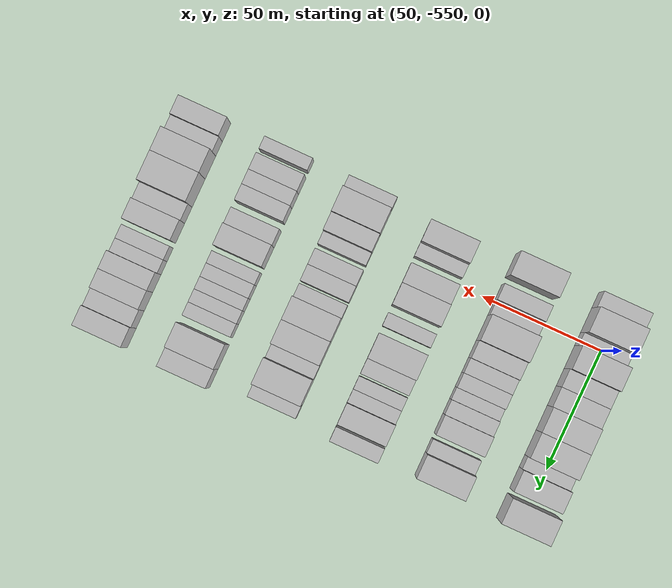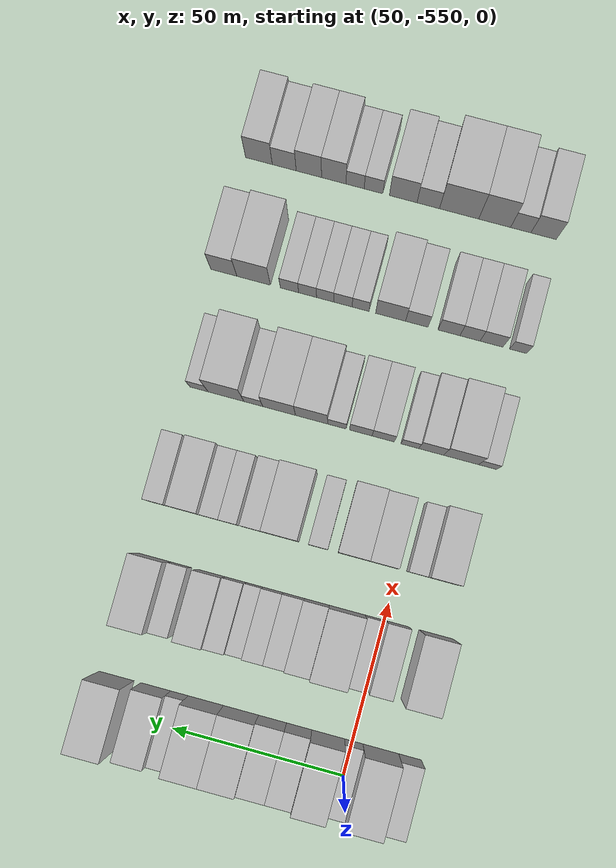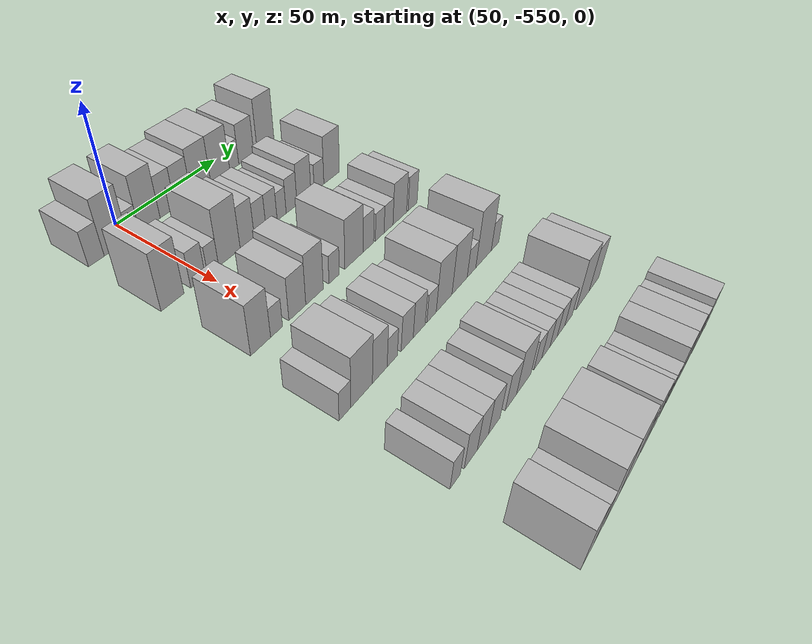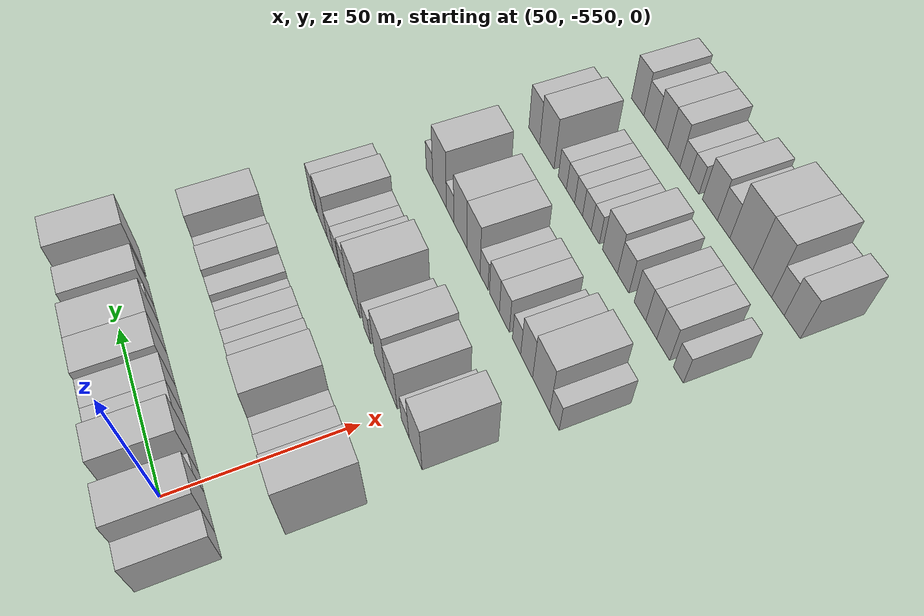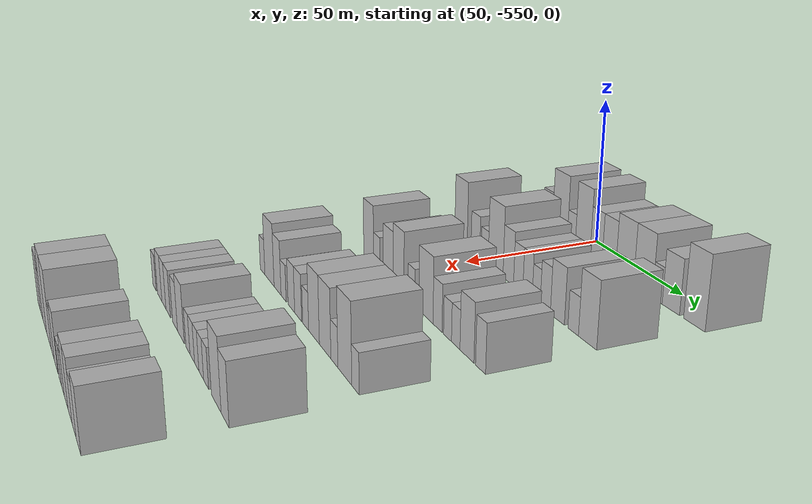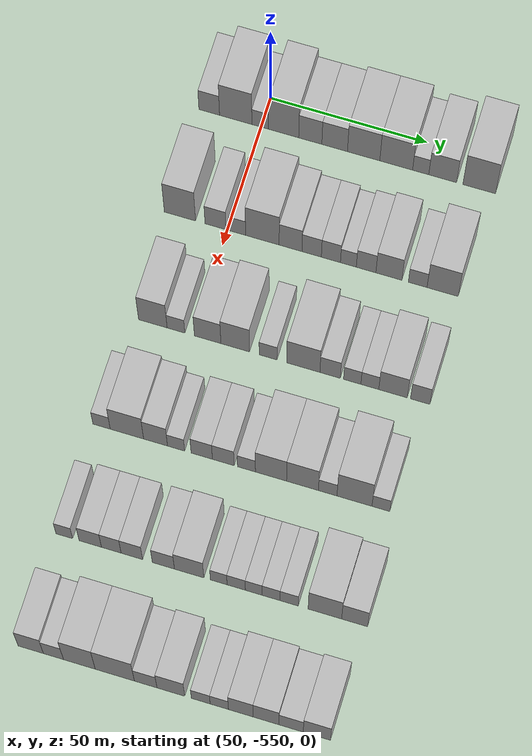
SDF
<sdf version="1.6">
 <world name="default">
  <model name="building_1">
   <static>1</static>
   <pose>50.0000 -566.6955 0 0.000000 0.000000 0.000000</pose>
   <link name="link">
    <pose>0 0 7.50 0 0 0</pose>
    <collision name="collision"><geometry><box><size>20.0000 6.6091 15.0000</size></box></geometry></collision>
    <visual name="visual">
     <cast_shadows>0</cast_shadows>
     <geometry><box><size>20.0000 6.6091 15.0000</size></box></geometry>
     <material>
      <script>
       <uri>model://HANNAS_wall/materials/scripts</uri>
       <uri>model://HANNAS_wall/materials/textures</uri>
       <name>vrc/HANNAS_wall</name>
      </script>
     </material>
    </visual>
   </link>
  </model>
  <model name="building_2">
   <static>1</static>
   <pose>50.0000 -558.2066 0 0.000000 0.000000 0.000000</pose>
   <link name="link">
    <pose>0 0 12.00 0 0 0</pose>
    <collision name="collision"><geometry><box><size>20.0000 10.3686 24.0000</size></box></geometry></collision>
    <visual name="visual">
     <cast_shadows>0</cast_shadows>
     <geometry><box><size>20.0000 10.3686 24.0000</size></box></geometry>
     <material>
      <script>
       <uri>model://HANNAS_wall/materials/scripts</uri>
       <uri>model://HANNAS_wall/materials/textures</uri>
       <name>vrc/HANNAS_wall</name>
      </script>
     </material>
    </visual>
   </link>
  </model>
  <model name="building_3">
   <static>1</static>
   <pose>50.0000 -550.3541 0 0.000000 0.000000 0.000000</pose>
   <link name="link">
    <pose>0 0 6.00 0 0 0</pose>
    <collision name="collision"><geometry><box><size>20.0000 5.3364 12.0000</size></box></geometry></collision>
    <visual name="visual">
     <cast_shadows>0</cast_shadows>
     <geometry><box><size>20.0000 5.3364 12.0000</size></box></geometry>
     <material>
      <script>
       <uri>model://HANNAS_wall/materials/scripts</uri>
       <uri>model://HANNAS_wall/materials/textures</uri>
       <name>vrc/HANNAS_wall</name>
      </script>
     </material>
    </visual>
   </link>
  </model>
  <model name="building_4">
   <static>1</static>
   <pose>50.0000 -542.8709 0 0.000000 0.000000 0.000000</pose>
   <link name="link">
    <pose>0 0 12.00 0 0 0</pose>
    <collision name="collision"><geometry><box><size>20.0000 9.6300 24.0000</size></box></geometry></collision>
    <visual name="visual">
     <cast_shadows>0</cast_shadows>
     <geometry><box><size>20.0000 9.6300 24.0000</size></box></geometry>
     <material>
      <script>
       <uri>model://HANNAS_wall/materials/scripts</uri>
       <uri>model://HANNAS_wall/materials/textures</uri>
       <name>vrc/HANNAS_wall</name>
      </script>
     </material>
    </visual>
   </link>
  </model>
  <model name="building_5">
   <static>1</static>
   <pose>50.0000 -534.3709 0 0.000000 0.000000 0.000000</pose>
   <link name="link">
    <pose>0 0 9.00 0 0 0</pose>
    <collision name="collision"><geometry><box><size>20.0000 7.3699 18.0000</size></box></geometry></collision>
    <visual name="visual">
     <cast_shadows>0</cast_shadows>
     <geometry><box><size>20.0000 7.3699 18.0000</size></box></geometry>
     <material>
      <script>
       <uri>model://HANNAS_wall/materials/scripts</uri>
       <uri>model://HANNAS_wall/materials/textures</uri>
       <name>vrc/HANNAS_wall</name>
      </script>
     </material>
    </visual>
   </link>
  </model>
  <model name="building_6">
   <static>1</static>
   <pose>50.0000 -526.6155 0 0.000000 0.000000 0.000000</pose>
   <link name="link">
    <pose>0 0 9.00 0 0 0</pose>
    <collision name="collision"><geometry><box><size>20.0000 8.1410 18.0000</size></box></geometry></collision>
    <visual name="visual">
     <cast_shadows>0</cast_shadows>
     <geometry><box><size>20.0000 8.1410 18.0000</size></box></geometry>
     <material>
      <script>
       <uri>model://HANNAS_wall/materials/scripts</uri>
       <uri>model://HANNAS_wall/materials/textures</uri>
       <name>vrc/HANNAS_wall</name>
      </script>
     </material>
    </visual>
   </link>
  </model>
  <model name="building_7">
   <static>1</static>
   <pose>50.0000 -517.3959 0 0.000000 0.000000 0.000000</pose>
   <link name="link">
    <pose>0 0 10.50 0 0 0</pose>
    <collision name="collision"><geometry><box><size>20.0000 10.2983 21.0000</size></box></geometry></collision>
    <visual name="visual">
     <cast_shadows>0</cast_shadows>
     <geometry><box><size>20.0000 10.2983 21.0000</size></box></geometry>
     <material>
      <script>
       <uri>model://HANNAS_wall/materials/scripts</uri>
       <uri>model://HANNAS_wall/materials/textures</uri>
       <name>vrc/HANNAS_wall</name>
      </script>
     </material>
    </visual>
   </link>
  </model>
  <model name="building_8">
   <static>1</static>
   <pose>50.0000 -507.0479 0 0.000000 0.000000 0.000000</pose>
   <link name="link">
    <pose>0 0 10.50 0 0 0</pose>
    <collision name="collision"><geometry><box><size>20.0000 10.3977 21.0000</size></box></geometry></collision>
    <visual name="visual">
     <cast_shadows>0</cast_shadows>
     <geometry><box><size>20.0000 10.3977 21.0000</size></box></geometry>
     <material>
      <script>
       <uri>model://HANNAS_wall/materials/scripts</uri>
       <uri>model://HANNAS_wall/materials/textures</uri>
       <name>vrc/HANNAS_wall</name>
      </script>
     </material>
    </visual>
   </link>
  </model>
  <model name="building_9">
   <static>1</static>
   <pose>50.0000 -499.2907 0 0.000000 0.000000 0.000000</pose>
   <link name="link">
    <pose>0 0 6.00 0 0 0</pose>
    <collision name="collision"><geometry><box><size>20.0000 5.1166 12.0000</size></box></geometry></collision>
    <visual name="visual">
     <cast_shadows>0</cast_shadows>
     <geometry><box><size>20.0000 5.1166 12.0000</size></box></geometry>
     <material>
      <script>
       <uri>model://HANNAS_wall/materials/scripts</uri>
       <uri>model://HANNAS_wall/materials/textures</uri>
       <name>vrc/HANNAS_wall</name>
      </script>
     </material>
    </visual>
   </link>
  </model>
  <model name="building_10">
   <static>1</static>
   <pose>50.0000 -492.3343 0 0.000000 0.000000 0.000000</pose>
   <link name="link">
    <pose>0 0 9.00 0 0 0</pose>
    <collision name="collision"><geometry><box><size>20.0000 8.7961 18.0000</size></box></geometry></collision>
    <visual name="visual">
     <cast_shadows>0</cast_shadows>
     <geometry><box><size>20.0000 8.7961 18.0000</size></box></geometry>
     <material>
      <script>
       <uri>model://HANNAS_wall/materials/scripts</uri>
       <uri>model://HANNAS_wall/materials/textures</uri>
       <name>vrc/HANNAS_wall</name>
      </script>
     </material>
    </visual>
   </link>
  </model>
  <model name="building_11">
   <static>1</static>
   <pose>50.0000 -480.7830 0 0.000000 0.000000 0.000000</pose>
   <link name="link">
    <pose>0 0 12.00 0 0 0</pose>
    <collision name="collision"><geometry><box><size>20.0000 10.3066 24.0000</size></box></geometry></collision>
    <visual name="visual">
     <cast_shadows>0</cast_shadows>
     <geometry><box><size>20.0000 10.3066 24.0000</size></box></geometry>
     <material>
      <script>
       <uri>model://HANNAS_wall/materials/scripts</uri>
       <uri>model://HANNAS_wall/materials/textures</uri>
       <name>vrc/HANNAS_wall</name>
      </script>
     </material>
    </visual>
   </link>
  </model>
  <model name="building_135">
   <static>1</static>
   <pose>85.0000 -565.0473 0 0.000000 0.000000 0.000000</pose>
   <link name="link">
    <pose>0 0 12.00 0 0 0</pose>
    <collision name="collision"><geometry><box><size>20.0000 9.9054 24.0000</size></box></geometry></collision>
    <visual name="visual">
     <cast_shadows>0</cast_shadows>
     <geometry><box><size>20.0000 9.9054 24.0000</size></box></geometry>
     <material>
      <script>
       <uri>model://HANNAS_wall/materials/scripts</uri>
       <uri>model://HANNAS_wall/materials/textures</uri>
       <name>vrc/HANNAS_wall</name>
      </script>
     </material>
    </visual>
   </link>
  </model>
  <model name="building_136">
   <static>1</static>
   <pose>85.0000 -553.7767 0 0.000000 0.000000 0.000000</pose>
   <link name="link">
    <pose>0 0 7.50 0 0 0</pose>
    <collision name="collision"><geometry><box><size>20.0000 6.6359 15.0000</size></box></geometry></collision>
    <visual name="visual">
     <cast_shadows>0</cast_shadows>
     <geometry><box><size>20.0000 6.6359 15.0000</size></box></geometry>
     <material>
      <script>
       <uri>model://HANNAS_wall/materials/scripts</uri>
       <uri>model://HANNAS_wall/materials/textures</uri>
       <name>vrc/HANNAS_wall</name>
      </script>
     </material>
    </visual>
   </link>
  </model>
  <model name="building_137">
   <static>1</static>
   <pose>85.0000 -546.8413 0 0.000000 0.000000 0.000000</pose>
   <link name="link">
    <pose>0 0 6.00 0 0 0</pose>
    <collision name="collision"><geometry><box><size>20.0000 5.2349 12.0000</size></box></geometry></collision>
    <visual name="visual">
     <cast_shadows>0</cast_shadows>
     <geometry><box><size>20.0000 5.2349 12.0000</size></box></geometry>
     <material>
      <script>
       <uri>model://HANNAS_wall/materials/scripts</uri>
       <uri>model://HANNAS_wall/materials/textures</uri>
       <name>vrc/HANNAS_wall</name>
      </script>
     </material>
    </visual>
   </link>
  </model>
  <model name="building_138">
   <static>1</static>
   <pose>85.0000 -538.9403 0 0.000000 0.000000 0.000000</pose>
   <link name="link">
    <pose>0 0 12.00 0 0 0</pose>
    <collision name="collision"><geometry><box><size>20.0000 10.5672 24.0000</size></box></geometry></collision>
    <visual name="visual">
     <cast_shadows>0</cast_shadows>
     <geometry><box><size>20.0000 10.5672 24.0000</size></box></geometry>
     <material>
      <script>
       <uri>model://HANNAS_wall/materials/scripts</uri>
       <uri>model://HANNAS_wall/materials/textures</uri>
       <name>vrc/HANNAS_wall</name>
      </script>
     </material>
    </visual>
   </link>
  </model>
  <model name="building_139">
   <static>1</static>
   <pose>85.0000 -530.0547 0 0.000000 0.000000 0.000000</pose>
   <link name="link">
    <pose>0 0 9.00 0 0 0</pose>
    <collision name="collision"><geometry><box><size>20.0000 7.2040 18.0000</size></box></geometry></collision>
    <visual name="visual">
     <cast_shadows>0</cast_shadows>
     <geometry><box><size>20.0000 7.2040 18.0000</size></box></geometry>
     <material>
      <script>
       <uri>model://HANNAS_wall/materials/scripts</uri>
       <uri>model://HANNAS_wall/materials/textures</uri>
       <name>vrc/HANNAS_wall</name>
      </script>
     </material>
    </visual>
   </link>
  </model>
  <model name="building_140">
   <static>1</static>
   <pose>85.0000 -523.3965 0 0.000000 0.000000 0.000000</pose>
   <link name="link">
    <pose>0 0 7.50 0 0 0</pose>
    <collision name="collision"><geometry><box><size>20.0000 6.1124 15.0000</size></box></geometry></collision>
    <visual name="visual">
     <cast_shadows>0</cast_shadows>
     <geometry><box><size>20.0000 6.1124 15.0000</size></box></geometry>
     <material>
      <script>
       <uri>model://HANNAS_wall/materials/scripts</uri>
       <uri>model://HANNAS_wall/materials/textures</uri>
       <name>vrc/HANNAS_wall</name>
      </script>
     </material>
    </visual>
   </link>
  </model>
  <model name="building_141">
   <static>1</static>
   <pose>85.0000 -517.3367 0 0.000000 0.000000 0.000000</pose>
   <link name="link">
    <pose>0 0 7.50 0 0 0</pose>
    <collision name="collision"><geometry><box><size>20.0000 6.0070 15.0000</size></box></geometry></collision>
    <visual name="visual">
     <cast_shadows>0</cast_shadows>
     <geometry><box><size>20.0000 6.0070 15.0000</size></box></geometry>
     <material>
      <script>
       <uri>model://HANNAS_wall/materials/scripts</uri>
       <uri>model://HANNAS_wall/materials/textures</uri>
       <name>vrc/HANNAS_wall</name>
      </script>
     </material>
    </visual>
   </link>
  </model>
  <model name="building_142">
   <static>1</static>
   <pose>85.0000 -511.8421 0 0.000000 0.000000 0.000000</pose>
   <link name="link">
    <pose>0 0 6.00 0 0 0</pose>
    <collision name="collision"><geometry><box><size>20.0000 4.9821 12.0000</size></box></geometry></collision>
    <visual name="visual">
     <cast_shadows>0</cast_shadows>
     <geometry><box><size>20.0000 4.9821 12.0000</size></box></geometry>
     <material>
      <script>
       <uri>model://HANNAS_wall/materials/scripts</uri>
       <uri>model://HANNAS_wall/materials/textures</uri>
       <name>vrc/HANNAS_wall</name>
      </script>
     </material>
    </visual>
   </link>
  </model>
  <model name="building_143">
   <static>1</static>
   <pose>85.0000 -506.2754 0 0.000000 0.000000 0.000000</pose>
   <link name="link">
    <pose>0 0 7.50 0 0 0</pose>
    <collision name="collision"><geometry><box><size>20.0000 6.1513 15.0000</size></box></geometry></collision>
    <visual name="visual">
     <cast_shadows>0</cast_shadows>
     <geometry><box><size>20.0000 6.1513 15.0000</size></box></geometry>
     <material>
      <script>
       <uri>model://HANNAS_wall/materials/scripts</uri>
       <uri>model://HANNAS_wall/materials/textures</uri>
       <name>vrc/HANNAS_wall</name>
      </script>
     </material>
    </visual>
   </link>
  </model>
  <model name="building_144">
   <static>1</static>
   <pose>85.0000 -499.1153 0 0.000000 0.000000 0.000000</pose>
   <link name="link">
    <pose>0 0 9.00 0 0 0</pose>
    <collision name="collision"><geometry><box><size>20.0000 8.1690 18.0000</size></box></geometry></collision>
    <visual name="visual">
     <cast_shadows>0</cast_shadows>
     <geometry><box><size>20.0000 8.1690 18.0000</size></box></geometry>
     <material>
      <script>
       <uri>model://HANNAS_wall/materials/scripts</uri>
       <uri>model://HANNAS_wall/materials/textures</uri>
       <name>vrc/HANNAS_wall</name>
      </script>
     </material>
    </visual>
   </link>
  </model>
  <model name="building_145">
   <static>1</static>
   <pose>85.0000 -490.1036 0 0.000000 0.000000 0.000000</pose>
   <link name="link">
    <pose>0 0 6.00 0 0 0</pose>
    <collision name="collision"><geometry><box><size>20.0000 5.8544 12.0000</size></box></geometry></collision>
    <visual name="visual">
     <cast_shadows>0</cast_shadows>
     <geometry><box><size>20.0000 5.8544 12.0000</size></box></geometry>
     <material>
      <script>
       <uri>model://HANNAS_wall/materials/scripts</uri>
       <uri>model://HANNAS_wall/materials/textures</uri>
       <name>vrc/HANNAS_wall</name>
      </script>
     </material>
    </visual>
   </link>
  </model>
  <model name="building_146">
   <static>1</static>
   <pose>85.0000 -482.3032 0 0.000000 0.000000 0.000000</pose>
   <link name="link">
    <pose>0 0 10.50 0 0 0</pose>
    <collision name="collision"><geometry><box><size>20.0000 9.7463 21.0000</size></box></geometry></collision>
    <visual name="visual">
     <cast_shadows>0</cast_shadows>
     <geometry><box><size>20.0000 9.7463 21.0000</size></box></geometry>
     <material>
      <script>
       <uri>model://HANNAS_wall/materials/scripts</uri>
       <uri>model://HANNAS_wall/materials/textures</uri>
       <name>vrc/HANNAS_wall</name>
      </script>
     </material>
    </visual>
   </link>
  </model>
  <model name="building_266">
   <static>1</static>
   <pose>120.0000 -562.5166 0 0.000000 0.000000 0.000000</pose>
   <link name="link">
    <pose>0 0 10.50 0 0 0</pose>
    <collision name="collision"><geometry><box><size>20.0000 8.9669 21.0000</size></box></geometry></collision>
    <visual name="visual">
     <cast_shadows>0</cast_shadows>
     <geometry><box><size>20.0000 8.9669 21.0000</size></box></geometry>
     <material>
      <script>
       <uri>model://HANNAS_wall/materials/scripts</uri>
       <uri>model://HANNAS_wall/materials/textures</uri>
       <name>vrc/HANNAS_wall</name>
      </script>
     </material>
    </visual>
   </link>
  </model>
  <model name="building_267">
   <static>1</static>
   <pose>120.0000 -555.2494 0 0.000000 0.000000 0.000000</pose>
   <link name="link">
    <pose>0 0 6.00 0 0 0</pose>
    <collision name="collision"><geometry><box><size>20.0000 5.5675 12.0000</size></box></geometry></collision>
    <visual name="visual">
     <cast_shadows>0</cast_shadows>
     <geometry><box><size>20.0000 5.5675 12.0000</size></box></geometry>
     <material>
      <script>
       <uri>model://HANNAS_wall/materials/scripts</uri>
       <uri>model://HANNAS_wall/materials/textures</uri>
       <name>vrc/HANNAS_wall</name>
      </script>
     </material>
    </visual>
   </link>
  </model>
  <model name="building_268">
   <static>1</static>
   <pose>120.0000 -545.3191 0 0.000000 0.000000 0.000000</pose>
   <link name="link">
    <pose>0 0 9.00 0 0 0</pose>
    <collision name="collision"><geometry><box><size>20.0000 8.2931 18.0000</size></box></geometry></collision>
    <visual name="visual">
     <cast_shadows>0</cast_shadows>
     <geometry><box><size>20.0000 8.2931 18.0000</size></box></geometry>
     <material>
      <script>
       <uri>model://HANNAS_wall/materials/scripts</uri>
       <uri>model://HANNAS_wall/materials/textures</uri>
       <name>vrc/HANNAS_wall</name>
      </script>
     </material>
    </visual>
   </link>
  </model>
  <model name="building_269">
   <static>1</static>
   <pose>120.0000 -536.6890 0 0.000000 0.000000 0.000000</pose>
   <link name="link">
    <pose>0 0 10.50 0 0 0</pose>
    <collision name="collision"><geometry><box><size>20.0000 8.9671 21.0000</size></box></geometry></collision>
    <visual name="visual">
     <cast_shadows>0</cast_shadows>
     <geometry><box><size>20.0000 8.9671 21.0000</size></box></geometry>
     <material>
      <script>
       <uri>model://HANNAS_wall/materials/scripts</uri>
       <uri>model://HANNAS_wall/materials/textures</uri>
       <name>vrc/HANNAS_wall</name>
      </script>
     </material>
    </visual>
   </link>
  </model>
  <model name="building_270">
   <static>1</static>
   <pose>120.0000 -526.4200 0 0.000000 0.000000 0.000000</pose>
   <link name="link">
    <pose>0 0 6.00 0 0 0</pose>
    <collision name="collision"><geometry><box><size>20.0000 5.5708 12.0000</size></box></geometry></collision>
    <visual name="visual">
     <cast_shadows>0</cast_shadows>
     <geometry><box><size>20.0000 5.5708 12.0000</size></box></geometry>
     <material>
      <script>
       <uri>model://HANNAS_wall/materials/scripts</uri>
       <uri>model://HANNAS_wall/materials/textures</uri>
       <name>vrc/HANNAS_wall</name>
      </script>
     </material>
    </visual>
   </link>
  </model>
  <model name="building_271">
   <static>1</static>
   <pose>120.0000 -515.4569 0 0.000000 0.000000 0.000000</pose>
   <link name="link">
    <pose>0 0 10.50 0 0 0</pose>
    <collision name="collision"><geometry><box><size>20.0000 10.3555 21.0000</size></box></geometry></collision>
    <visual name="visual">
     <cast_shadows>0</cast_shadows>
     <geometry><box><size>20.0000 10.3555 21.0000</size></box></geometry>
     <material>
      <script>
       <uri>model://HANNAS_wall/materials/scripts</uri>
       <uri>model://HANNAS_wall/materials/textures</uri>
       <name>vrc/HANNAS_wall</name>
      </script>
     </material>
    </visual>
   </link>
  </model>
  <model name="building_272">
   <static>1</static>
   <pose>120.0000 -507.1099 0 0.000000 0.000000 0.000000</pose>
   <link name="link">
    <pose>0 0 7.50 0 0 0</pose>
    <collision name="collision"><geometry><box><size>20.0000 6.3385 15.0000</size></box></geometry></collision>
    <visual name="visual">
     <cast_shadows>0</cast_shadows>
     <geometry><box><size>20.0000 6.3385 15.0000</size></box></geometry>
     <material>
      <script>
       <uri>model://HANNAS_wall/materials/scripts</uri>
       <uri>model://HANNAS_wall/materials/textures</uri>
       <name>vrc/HANNAS_wall</name>
      </script>
     </material>
    </visual>
   </link>
  </model>
  <model name="building_273">
   <static>1</static>
   <pose>120.0000 -500.2498 0 0.000000 0.000000 0.000000</pose>
   <link name="link">
    <pose>0 0 6.00 0 0 0</pose>
    <collision name="collision"><geometry><box><size>20.0000 5.3818 12.0000</size></box></geometry></collision>
    <visual name="visual">
     <cast_shadows>0</cast_shadows>
     <geometry><box><size>20.0000 5.3818 12.0000</size></box></geometry>
     <material>
      <script>
       <uri>model://HANNAS_wall/materials/scripts</uri>
       <uri>model://HANNAS_wall/materials/textures</uri>
       <name>vrc/HANNAS_wall</name>
      </script>
     </material>
    </visual>
   </link>
  </model>
  <model name="building_274">
   <static>1</static>
   <pose>120.0000 -494.7819 0 0.000000 0.000000 0.000000</pose>
   <link name="link">
    <pose>0 0 6.00 0 0 0</pose>
    <collision name="collision"><geometry><box><size>20.0000 5.5540 12.0000</size></box></geometry></collision>
    <visual name="visual">
     <cast_shadows>0</cast_shadows>
     <geometry><box><size>20.0000 5.5540 12.0000</size></box></geometry>
     <material>
      <script>
       <uri>model://HANNAS_wall/materials/scripts</uri>
       <uri>model://HANNAS_wall/materials/textures</uri>
       <name>vrc/HANNAS_wall</name>
      </script>
     </material>
    </visual>
   </link>
  </model>
  <model name="building_275">
   <static>1</static>
   <pose>120.0000 -487.6046 0 0.000000 0.000000 0.000000</pose>
   <link name="link">
    <pose>0 0 9.00 0 0 0</pose>
    <collision name="collision"><geometry><box><size>20.0000 8.8006 18.0000</size></box></geometry></collision>
    <visual name="visual">
     <cast_shadows>0</cast_shadows>
     <geometry><box><size>20.0000 8.8006 18.0000</size></box></geometry>
     <material>
      <script>
       <uri>model://HANNAS_wall/materials/scripts</uri>
       <uri>model://HANNAS_wall/materials/textures</uri>
       <name>vrc/HANNAS_wall</name>
      </script>
     </material>
    </visual>
   </link>
  </model>
  <model name="building_276">
   <static>1</static>
   <pose>120.0000 -479.1938 0 0.000000 0.000000 0.000000</pose>
   <link name="link">
    <pose>0 0 7.50 0 0 0</pose>
    <collision name="collision"><geometry><box><size>20.0000 6.0209 15.0000</size></box></geometry></collision>
    <visual name="visual">
     <cast_shadows>0</cast_shadows>
     <geometry><box><size>20.0000 6.0209 15.0000</size></box></geometry>
     <material>
      <script>
       <uri>model://HANNAS_wall/materials/scripts</uri>
       <uri>model://HANNAS_wall/materials/textures</uri>
       <name>vrc/HANNAS_wall</name>
      </script>
     </material>
    </visual>
   </link>
  </model>
  <model name="building_397">
   <static>1</static>
   <pose>155.0000 -567.3066 0 0.000000 0.000000 0.000000</pose>
   <link name="link">
    <pose>0 0 6.00 0 0 0</pose>
    <collision name="collision"><geometry><box><size>20.0000 5.3868 12.0000</size></box></geometry></collision>
    <visual name="visual">
     <cast_shadows>0</cast_shadows>
     <geometry><box><size>20.0000 5.3868 12.0000</size></box></geometry>
     <material>
      <script>
       <uri>model://HANNAS_wall/materials/scripts</uri>
       <uri>model://HANNAS_wall/materials/textures</uri>
       <name>vrc/HANNAS_wall</name>
      </script>
     </material>
    </visual>
   </link>
  </model>
  <model name="building_398">
   <static>1</static>
   <pose>155.0000 -559.4296 0 0.000000 0.000000 0.000000</pose>
   <link name="link">
    <pose>0 0 10.50 0 0 0</pose>
    <collision name="collision"><geometry><box><size>20.0000 10.3671 21.0000</size></box></geometry></collision>
    <visual name="visual">
     <cast_shadows>0</cast_shadows>
     <geometry><box><size>20.0000 10.3671 21.0000</size></box></geometry>
     <material>
      <script>
       <uri>model://HANNAS_wall/materials/scripts</uri>
       <uri>model://HANNAS_wall/materials/textures</uri>
       <name>vrc/HANNAS_wall</name>
      </script>
     </material>
    </visual>
   </link>
  </model>
  <model name="building_399">
   <static>1</static>
   <pose>155.0000 -550.5368 0 0.000000 0.000000 0.000000</pose>
   <link name="link">
    <pose>0 0 9.00 0 0 0</pose>
    <collision name="collision"><geometry><box><size>20.0000 7.4187 18.0000</size></box></geometry></collision>
    <visual name="visual">
     <cast_shadows>0</cast_shadows>
     <geometry><box><size>20.0000 7.4187 18.0000</size></box></geometry>
     <material>
      <script>
       <uri>model://HANNAS_wall/materials/scripts</uri>
       <uri>model://HANNAS_wall/materials/textures</uri>
       <name>vrc/HANNAS_wall</name>
      </script>
     </material>
    </visual>
   </link>
  </model>
  <model name="building_400">
   <static>1</static>
   <pose>155.0000 -544.1675 0 0.000000 0.000000 0.000000</pose>
   <link name="link">
    <pose>0 0 6.00 0 0 0</pose>
    <collision name="collision"><geometry><box><size>20.0000 5.3199 12.0000</size></box></geometry></collision>
    <visual name="visual">
     <cast_shadows>0</cast_shadows>
     <geometry><box><size>20.0000 5.3199 12.0000</size></box></geometry>
     <material>
      <script>
       <uri>model://HANNAS_wall/materials/scripts</uri>
       <uri>model://HANNAS_wall/materials/textures</uri>
       <name>vrc/HANNAS_wall</name>
      </script>
     </material>
    </visual>
   </link>
  </model>
  <model name="building_401">
   <static>1</static>
   <pose>155.0000 -536.2048 0 0.000000 0.000000 0.000000</pose>
   <link name="link">
    <pose>0 0 7.50 0 0 0</pose>
    <collision name="collision"><geometry><box><size>20.0000 6.6055 15.0000</size></box></geometry></collision>
    <visual name="visual">
     <cast_shadows>0</cast_shadows>
     <geometry><box><size>20.0000 6.6055 15.0000</size></box></geometry>
     <material>
      <script>
       <uri>model://HANNAS_wall/materials/scripts</uri>
       <uri>model://HANNAS_wall/materials/textures</uri>
       <name>vrc/HANNAS_wall</name>
      </script>
     </material>
    </visual>
   </link>
  </model>
  <model name="building_402">
   <static>1</static>
   <pose>155.0000 -529.5343 0 0.000000 0.000000 0.000000</pose>
   <link name="link">
    <pose>0 0 7.50 0 0 0</pose>
    <collision name="collision"><geometry><box><size>20.0000 6.7354 15.0000</size></box></geometry></collision>
    <visual name="visual">
     <cast_shadows>0</cast_shadows>
     <geometry><box><size>20.0000 6.7354 15.0000</size></box></geometry>
     <material>
      <script>
       <uri>model://HANNAS_wall/materials/scripts</uri>
       <uri>model://HANNAS_wall/materials/textures</uri>
       <name>vrc/HANNAS_wall</name>
      </script>
     </material>
    </visual>
   </link>
  </model>
  <model name="building_403">
   <static>1</static>
   <pose>155.0000 -522.3937 0 0.000000 0.000000 0.000000</pose>
   <link name="link">
    <pose>0 0 6.00 0 0 0</pose>
    <collision name="collision"><geometry><box><size>20.0000 5.5457 12.0000</size></box></geometry></collision>
    <visual name="visual">
     <cast_shadows>0</cast_shadows>
     <geometry><box><size>20.0000 5.5457 12.0000</size></box></geometry>
     <material>
      <script>
       <uri>model://HANNAS_wall/materials/scripts</uri>
       <uri>model://HANNAS_wall/materials/textures</uri>
       <name>vrc/HANNAS_wall</name>
      </script>
     </material>
    </visual>
   </link>
  </model>
  <model name="building_404">
   <static>1</static>
   <pose>155.0000 -514.8272 0 0.000000 0.000000 0.000000</pose>
   <link name="link">
    <pose>0 0 10.50 0 0 0</pose>
    <collision name="collision"><geometry><box><size>20.0000 9.5874 21.0000</size></box></geometry></collision>
    <visual name="visual">
     <cast_shadows>0</cast_shadows>
     <geometry><box><size>20.0000 9.5874 21.0000</size></box></geometry>
     <material>
      <script>
       <uri>model://HANNAS_wall/materials/scripts</uri>
       <uri>model://HANNAS_wall/materials/textures</uri>
       <name>vrc/HANNAS_wall</name>
      </script>
     </material>
    </visual>
   </link>
  </model>
  <model name="building_405">
   <static>1</static>
   <pose>155.0000 -505.1395 0 0.000000 0.000000 0.000000</pose>
   <link name="link">
    <pose>0 0 10.50 0 0 0</pose>
    <collision name="collision"><geometry><box><size>20.0000 9.7880 21.0000</size></box></geometry></collision>
    <visual name="visual">
     <cast_shadows>0</cast_shadows>
     <geometry><box><size>20.0000 9.7880 21.0000</size></box></geometry>
     <material>
      <script>
       <uri>model://HANNAS_wall/materials/scripts</uri>
       <uri>model://HANNAS_wall/materials/textures</uri>
       <name>vrc/HANNAS_wall</name>
      </script>
     </material>
    </visual>
   </link>
  </model>
  <model name="building_406">
   <static>1</static>
   <pose>155.0000 -497.4009 0 0.000000 0.000000 0.000000</pose>
   <link name="link">
    <pose>0 0 6.00 0 0 0</pose>
    <collision name="collision"><geometry><box><size>20.0000 5.6893 12.0000</size></box></geometry></collision>
    <visual name="visual">
     <cast_shadows>0</cast_shadows>
     <geometry><box><size>20.0000 5.6893 12.0000</size></box></geometry>
     <material>
      <script>
       <uri>model://HANNAS_wall/materials/scripts</uri>
       <uri>model://HANNAS_wall/materials/textures</uri>
       <name>vrc/HANNAS_wall</name>
      </script>
     </material>
    </visual>
   </link>
  </model>
  <model name="building_407">
   <static>1</static>
   <pose>155.0000 -489.1833 0 0.000000 0.000000 0.000000</pose>
   <link name="link">
    <pose>0 0 12.00 0 0 0</pose>
    <collision name="collision"><geometry><box><size>20.0000 10.7460 24.0000</size></box></geometry></collision>
    <visual name="visual">
     <cast_shadows>0</cast_shadows>
     <geometry><box><size>20.0000 10.7460 24.0000</size></box></geometry>
     <material>
      <script>
       <uri>model://HANNAS_wall/materials/scripts</uri>
       <uri>model://HANNAS_wall/materials/textures</uri>
       <name>vrc/HANNAS_wall</name>
      </script>
     </material>
    </visual>
   </link>
  </model>
  <model name="building_408">
   <static>1</static>
   <pose>155.0000 -481.0865 0 0.000000 0.000000 0.000000</pose>
   <link name="link">
    <pose>0 0 6.00 0 0 0</pose>
    <collision name="collision"><geometry><box><size>20.0000 5.4475 12.0000</size></box></geometry></collision>
    <visual name="visual">
     <cast_shadows>0</cast_shadows>
     <geometry><box><size>20.0000 5.4475 12.0000</size></box></geometry>
     <material>
      <script>
       <uri>model://HANNAS_wall/materials/scripts</uri>
       <uri>model://HANNAS_wall/materials/textures</uri>
       <name>vrc/HANNAS_wall</name>
      </script>
     </material>
    </visual>
   </link>
  </model>
  <model name="building_527">
   <static>1</static>
   <pose>190.0000 -567.4299 0 0.000000 0.000000 0.000000</pose>
   <link name="link">
    <pose>0 0 6.00 0 0 0</pose>
    <collision name="collision"><geometry><box><size>20.0000 5.1402 12.0000</size></box></geometry></collision>
    <visual name="visual">
     <cast_shadows>0</cast_shadows>
     <geometry><box><size>20.0000 5.1402 12.0000</size></box></geometry>
     <material>
      <script>
       <uri>model://HANNAS_wall/materials/scripts</uri>
       <uri>model://HANNAS_wall/materials/textures</uri>
       <name>vrc/HANNAS_wall</name>
      </script>
     </material>
    </visual>
   </link>
  </model>
  <model name="building_528">
   <static>1</static>
   <pose>190.0000 -559.4237 0 0.000000 0.000000 0.000000</pose>
   <link name="link">
    <pose>0 0 7.50 0 0 0</pose>
    <collision name="collision"><geometry><box><size>20.0000 6.8721 15.0000</size></box></geometry></collision>
    <visual name="visual">
     <cast_shadows>0</cast_shadows>
     <geometry><box><size>20.0000 6.8721 15.0000</size></box></geometry>
     <material>
      <script>
       <uri>model://HANNAS_wall/materials/scripts</uri>
       <uri>model://HANNAS_wall/materials/textures</uri>
       <name>vrc/HANNAS_wall</name>
      </script>
     </material>
    </visual>
   </link>
  </model>
  <model name="building_529">
   <static>1</static>
   <pose>190.0000 -552.9642 0 0.000000 0.000000 0.000000</pose>
   <link name="link">
    <pose>0 0 7.50 0 0 0</pose>
    <collision name="collision"><geometry><box><size>20.0000 6.0469 15.0000</size></box></geometry></collision>
    <visual name="visual">
     <cast_shadows>0</cast_shadows>
     <geometry><box><size>20.0000 6.0469 15.0000</size></box></geometry>
     <material>
      <script>
       <uri>model://HANNAS_wall/materials/scripts</uri>
       <uri>model://HANNAS_wall/materials/textures</uri>
       <name>vrc/HANNAS_wall</name>
      </script>
     </material>
    </visual>
   </link>
  </model>
  <model name="building_530">
   <static>1</static>
   <pose>190.0000 -546.6521 0 0.000000 0.000000 0.000000</pose>
   <link name="link">
    <pose>0 0 7.50 0 0 0</pose>
    <collision name="collision"><geometry><box><size>20.0000 6.5773 15.0000</size></box></geometry></collision>
    <visual name="visual">
     <cast_shadows>0</cast_shadows>
     <geometry><box><size>20.0000 6.5773 15.0000</size></box></geometry>
     <material>
      <script>
       <uri>model://HANNAS_wall/materials/scripts</uri>
       <uri>model://HANNAS_wall/materials/textures</uri>
       <name>vrc/HANNAS_wall</name>
      </script>
     </material>
    </visual>
   </link>
  </model>
  <model name="building_531">
   <static>1</static>
   <pose>190.0000 -536.9810 0 0.000000 0.000000 0.000000</pose>
   <link name="link">
    <pose>0 0 7.50 0 0 0</pose>
    <collision name="collision"><geometry><box><size>20.0000 6.7649 15.0000</size></box></geometry></collision>
    <visual name="visual">
     <cast_shadows>0</cast_shadows>
     <geometry><box><size>20.0000 6.7649 15.0000</size></box></geometry>
     <material>
      <script>
       <uri>model://HANNAS_wall/materials/scripts</uri>
       <uri>model://HANNAS_wall/materials/textures</uri>
       <name>vrc/HANNAS_wall</name>
      </script>
     </material>
    </visual>
   </link>
  </model>
  <model name="building_532">
   <static>1</static>
   <pose>190.0000 -529.0994 0 0.000000 0.000000 0.000000</pose>
   <link name="link">
    <pose>0 0 9.00 0 0 0</pose>
    <collision name="collision"><geometry><box><size>20.0000 8.9984 18.0000</size></box></geometry></collision>
    <visual name="visual">
     <cast_shadows>0</cast_shadows>
     <geometry><box><size>20.0000 8.9984 18.0000</size></box></geometry>
     <material>
      <script>
       <uri>model://HANNAS_wall/materials/scripts</uri>
       <uri>model://HANNAS_wall/materials/textures</uri>
       <name>vrc/HANNAS_wall</name>
      </script>
     </material>
    </visual>
   </link>
  </model>
  <model name="building_533">
   <static>1</static>
   <pose>190.0000 -520.0552 0 0.000000 0.000000 0.000000</pose>
   <link name="link">
    <pose>0 0 6.00 0 0 0</pose>
    <collision name="collision"><geometry><box><size>20.0000 5.0899 12.0000</size></box></geometry></collision>
    <visual name="visual">
     <cast_shadows>0</cast_shadows>
     <geometry><box><size>20.0000 5.0899 12.0000</size></box></geometry>
     <material>
      <script>
       <uri>model://HANNAS_wall/materials/scripts</uri>
       <uri>model://HANNAS_wall/materials/textures</uri>
       <name>vrc/HANNAS_wall</name>
      </script>
     </material>
    </visual>
   </link>
  </model>
  <model name="building_534">
   <static>1</static>
   <pose>190.0000 -514.7197 0 0.000000 0.000000 0.000000</pose>
   <link name="link">
    <pose>0 0 6.00 0 0 0</pose>
    <collision name="collision"><geometry><box><size>20.0000 5.5810 12.0000</size></box></geometry></collision>
    <visual name="visual">
     <cast_shadows>0</cast_shadows>
     <geometry><box><size>20.0000 5.5810 12.0000</size></box></geometry>
     <material>
      <script>
       <uri>model://HANNAS_wall/materials/scripts</uri>
       <uri>model://HANNAS_wall/materials/textures</uri>
       <name>vrc/HANNAS_wall</name>
      </script>
     </material>
    </visual>
   </link>
  </model>
  <model name="building_535">
   <static>1</static>
   <pose>190.0000 -509.3653 0 0.000000 0.000000 0.000000</pose>
   <link name="link">
    <pose>0 0 6.00 0 0 0</pose>
    <collision name="collision"><geometry><box><size>20.0000 5.1279 12.0000</size></box></geometry></collision>
    <visual name="visual">
     <cast_shadows>0</cast_shadows>
     <geometry><box><size>20.0000 5.1279 12.0000</size></box></geometry>
     <material>
      <script>
       <uri>model://HANNAS_wall/materials/scripts</uri>
       <uri>model://HANNAS_wall/materials/textures</uri>
       <name>vrc/HANNAS_wall</name>
      </script>
     </material>
    </visual>
   </link>
  </model>
  <model name="building_536">
   <static>1</static>
   <pose>190.0000 -504.0887 0 0.000000 0.000000 0.000000</pose>
   <link name="link">
    <pose>0 0 6.00 0 0 0</pose>
    <collision name="collision"><geometry><box><size>20.0000 5.4253 12.0000</size></box></geometry></collision>
    <visual name="visual">
     <cast_shadows>0</cast_shadows>
     <geometry><box><size>20.0000 5.4253 12.0000</size></box></geometry>
     <material>
      <script>
       <uri>model://HANNAS_wall/materials/scripts</uri>
       <uri>model://HANNAS_wall/materials/textures</uri>
       <name>vrc/HANNAS_wall</name>
      </script>
     </material>
    </visual>
   </link>
  </model>
  <model name="building_537">
   <static>1</static>
   <pose>190.0000 -498.6157 0 0.000000 0.000000 0.000000</pose>
   <link name="link">
    <pose>0 0 6.00 0 0 0</pose>
    <collision name="collision"><geometry><box><size>20.0000 5.5207 12.0000</size></box></geometry></collision>
    <visual name="visual">
     <cast_shadows>0</cast_shadows>
     <geometry><box><size>20.0000 5.5207 12.0000</size></box></geometry>
     <material>
      <script>
       <uri>model://HANNAS_wall/materials/scripts</uri>
       <uri>model://HANNAS_wall/materials/textures</uri>
       <name>vrc/HANNAS_wall</name>
      </script>
     </material>
    </visual>
   </link>
  </model>
  <model name="building_538">
   <static>1</static>
   <pose>190.0000 -487.7704 0 0.000000 0.000000 0.000000</pose>
   <link name="link">
    <pose>0 0 10.50 0 0 0</pose>
    <collision name="collision"><geometry><box><size>20.0000 10.1698 21.0000</size></box></geometry></collision>
    <visual name="visual">
     <cast_shadows>0</cast_shadows>
     <geometry><box><size>20.0000 10.1698 21.0000</size></box></geometry>
     <material>
      <script>
       <uri>model://HANNAS_wall/materials/scripts</uri>
       <uri>model://HANNAS_wall/materials/textures</uri>
       <name>vrc/HANNAS_wall</name>
      </script>
     </material>
    </visual>
   </link>
  </model>
  <model name="building_539">
   <static>1</static>
   <pose>190.0000 -478.7580 0 0.000000 0.000000 0.000000</pose>
   <link name="link">
    <pose>0 0 9.00 0 0 0</pose>
    <collision name="collision"><geometry><box><size>20.0000 7.8551 18.0000</size></box></geometry></collision>
    <visual name="visual">
     <cast_shadows>0</cast_shadows>
     <geometry><box><size>20.0000 7.8551 18.0000</size></box></geometry>
     <material>
      <script>
       <uri>model://HANNAS_wall/materials/scripts</uri>
       <uri>model://HANNAS_wall/materials/textures</uri>
       <name>vrc/HANNAS_wall</name>
      </script>
     </material>
    </visual>
   </link>
  </model>
  <model name="building_653">
   <static>1</static>
   <pose>225.0000 -566.1600 0 0.000000 0.000000 0.000000</pose>
   <link name="link">
    <pose>0 0 9.00 0 0 0</pose>
    <collision name="collision"><geometry><box><size>20.0000 7.6800 18.0000</size></box></geometry></collision>
    <visual name="visual">
     <cast_shadows>0</cast_shadows>
     <geometry><box><size>20.0000 7.6800 18.0000</size></box></geometry>
     <material>
      <script>
       <uri>model://HANNAS_wall/materials/scripts</uri>
       <uri>model://HANNAS_wall/materials/textures</uri>
       <name>vrc/HANNAS_wall</name>
      </script>
     </material>
    </visual>
   </link>
  </model>
  <model name="building_654">
   <static>1</static>
   <pose>225.0000 -559.2561 0 0.000000 0.000000 0.000000</pose>
   <link name="link">
    <pose>0 0 7.50 0 0 0</pose>
    <collision name="collision"><geometry><box><size>20.0000 6.1278 15.0000</size></box></geometry></collision>
    <visual name="visual">
     <cast_shadows>0</cast_shadows>
     <geometry><box><size>20.0000 6.1278 15.0000</size></box></geometry>
     <material>
      <script>
       <uri>model://HANNAS_wall/materials/scripts</uri>
       <uri>model://HANNAS_wall/materials/textures</uri>
       <name>vrc/HANNAS_wall</name>
      </script>
     </material>
    </visual>
   </link>
  </model>
  <model name="building_655">
   <static>1</static>
   <pose>225.0000 -551.3578 0 0.000000 0.000000 0.000000</pose>
   <link name="link">
    <pose>0 0 12.00 0 0 0</pose>
    <collision name="collision"><geometry><box><size>20.0000 9.6687 24.0000</size></box></geometry></collision>
    <visual name="visual">
     <cast_shadows>0</cast_shadows>
     <geometry><box><size>20.0000 9.6687 24.0000</size></box></geometry>
     <material>
      <script>
       <uri>model://HANNAS_wall/materials/scripts</uri>
       <uri>model://HANNAS_wall/materials/textures</uri>
       <name>vrc/HANNAS_wall</name>
      </script>
     </material>
    </visual>
   </link>
  </model>
  <model name="building_656">
   <static>1</static>
   <pose>225.0000 -540.5809 0 0.000000 0.000000 0.000000</pose>
   <link name="link">
    <pose>0 0 12.00 0 0 0</pose>
    <collision name="collision"><geometry><box><size>20.0000 11.8852 24.0000</size></box></geometry></collision>
    <visual name="visual">
     <cast_shadows>0</cast_shadows>
     <geometry><box><size>20.0000 11.8852 24.0000</size></box></geometry>
     <material>
      <script>
       <uri>model://HANNAS_wall/materials/scripts</uri>
       <uri>model://HANNAS_wall/materials/textures</uri>
       <name>vrc/HANNAS_wall</name>
      </script>
     </material>
    </visual>
   </link>
  </model>
  <model name="building_657">
   <static>1</static>
   <pose>225.0000 -531.2235 0 0.000000 0.000000 0.000000</pose>
   <link name="link">
    <pose>0 0 7.50 0 0 0</pose>
    <collision name="collision"><geometry><box><size>20.0000 6.8295 15.0000</size></box></geometry></collision>
    <visual name="visual">
     <cast_shadows>0</cast_shadows>
     <geometry><box><size>20.0000 6.8295 15.0000</size></box></geometry>
     <material>
      <script>
       <uri>model://HANNAS_wall/materials/scripts</uri>
       <uri>model://HANNAS_wall/materials/textures</uri>
       <name>vrc/HANNAS_wall</name>
      </script>
     </material>
    </visual>
   </link>
  </model>
  <model name="building_658">
   <static>1</static>
   <pose>225.0000 -523.6131 0 0.000000 0.000000 0.000000</pose>
   <link name="link">
    <pose>0 0 9.00 0 0 0</pose>
    <collision name="collision"><geometry><box><size>20.0000 8.3914 18.0000</size></box></geometry></collision>
    <visual name="visual">
     <cast_shadows>0</cast_shadows>
     <geometry><box><size>20.0000 8.3914 18.0000</size></box></geometry>
     <material>
      <script>
       <uri>model://HANNAS_wall/materials/scripts</uri>
       <uri>model://HANNAS_wall/materials/textures</uri>
       <name>vrc/HANNAS_wall</name>
      </script>
     </material>
    </visual>
   </link>
  </model>
  <model name="building_659">
   <static>1</static>
   <pose>225.0000 -514.5811 0 0.000000 0.000000 0.000000</pose>
   <link name="link">
    <pose>0 0 6.00 0 0 0</pose>
    <collision name="collision"><geometry><box><size>20.0000 5.6724 12.0000</size></box></geometry></collision>
    <visual name="visual">
     <cast_shadows>0</cast_shadows>
     <geometry><box><size>20.0000 5.6724 12.0000</size></box></geometry>
     <material>
      <script>
       <uri>model://HANNAS_wall/materials/scripts</uri>
       <uri>model://HANNAS_wall/materials/textures</uri>
       <name>vrc/HANNAS_wall</name>
      </script>
     </material>
    </visual>
   </link>
  </model>
  <model name="building_660">
   <static>1</static>
   <pose>225.0000 -508.9918 0 0.000000 0.000000 0.000000</pose>
   <link name="link">
    <pose>0 0 6.00 0 0 0</pose>
    <collision name="collision"><geometry><box><size>20.0000 5.5063 12.0000</size></box></geometry></collision>
    <visual name="visual">
     <cast_shadows>0</cast_shadows>
     <geometry><box><size>20.0000 5.5063 12.0000</size></box></geometry>
     <material>
      <script>
       <uri>model://HANNAS_wall/materials/scripts</uri>
       <uri>model://HANNAS_wall/materials/textures</uri>
       <name>vrc/HANNAS_wall</name>
      </script>
     </material>
    </visual>
   </link>
  </model>
  <model name="building_661">
   <static>1</static>
   <pose>225.0000 -502.5076 0 0.000000 0.000000 0.000000</pose>
   <link name="link">
    <pose>0 0 9.00 0 0 0</pose>
    <collision name="collision"><geometry><box><size>20.0000 7.4619 18.0000</size></box></geometry></collision>
    <visual name="visual">
     <cast_shadows>0</cast_shadows>
     <geometry><box><size>20.0000 7.4619 18.0000</size></box></geometry>
     <material>
      <script>
       <uri>model://HANNAS_wall/materials/scripts</uri>
       <uri>model://HANNAS_wall/materials/textures</uri>
       <name>vrc/HANNAS_wall</name>
      </script>
     </material>
    </visual>
   </link>
  </model>
  <model name="building_662">
   <static>1</static>
   <pose>225.0000 -494.9099 0 0.000000 0.000000 0.000000</pose>
   <link name="link">
    <pose>0 0 9.00 0 0 0</pose>
    <collision name="collision"><geometry><box><size>20.0000 7.7335 18.0000</size></box></geometry></collision>
    <visual name="visual">
     <cast_shadows>0</cast_shadows>
     <geometry><box><size>20.0000 7.7335 18.0000</size></box></geometry>
     <material>
      <script>
       <uri>model://HANNAS_wall/materials/scripts</uri>
       <uri>model://HANNAS_wall/materials/textures</uri>
       <name>vrc/HANNAS_wall</name>
      </script>
     </material>
    </visual>
   </link>
  </model>
  <model name="building_663">
   <static>1</static>
   <pose>225.0000 -487.4014 0 0.000000 0.000000 0.000000</pose>
   <link name="link">
    <pose>0 0 7.50 0 0 0</pose>
    <collision name="collision"><geometry><box><size>20.0000 7.2837 15.0000</size></box></geometry></collision>
    <visual name="visual">
     <cast_shadows>0</cast_shadows>
     <geometry><box><size>20.0000 7.2837 15.0000</size></box></geometry>
     <material>
      <script>
       <uri>model://HANNAS_wall/materials/scripts</uri>
       <uri>model://HANNAS_wall/materials/textures</uri>
       <name>vrc/HANNAS_wall</name>
      </script>
     </material>
    </visual>
   </link>
  </model>
  <model name="building_664">
   <static>1</static>
   <pose>225.0000 -479.6790 0 0.000000 0.000000 0.000000</pose>
   <link name="link">
    <pose>0 0 9.00 0 0 0</pose>
    <collision name="collision"><geometry><box><size>20.0000 8.1611 18.0000</size></box></geometry></collision>
    <visual name="visual">
     <cast_shadows>0</cast_shadows>
     <geometry><box><size>20.0000 8.1611 18.0000</size></box></geometry>
     <material>
      <script>
       <uri>model://HANNAS_wall/materials/scripts</uri>
       <uri>model://HANNAS_wall/materials/textures</uri>
       <name>vrc/HANNAS_wall</name>
      </script>
     </material>
    </visual>
   </link>
  </model>
 </world>
</sdf>
